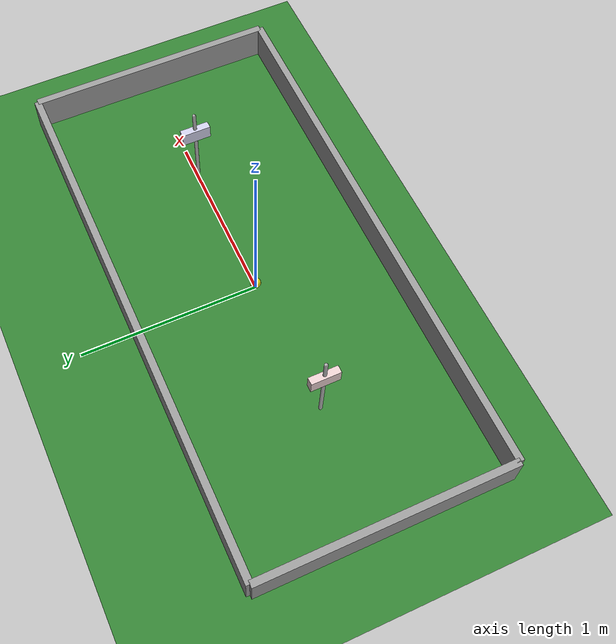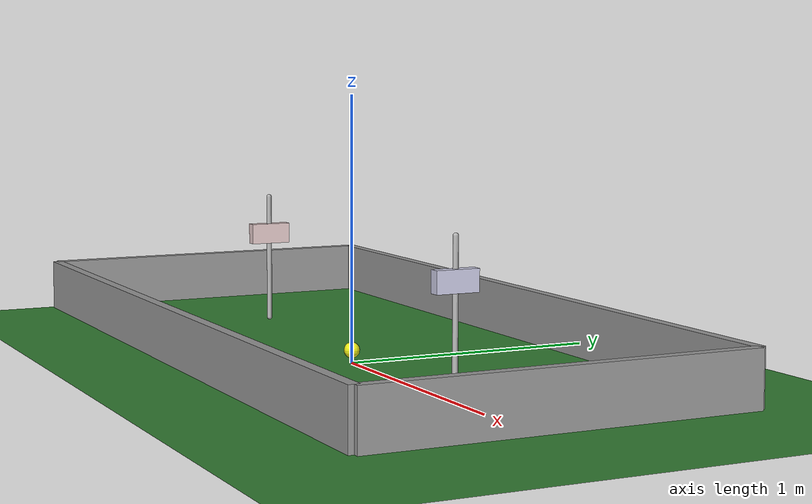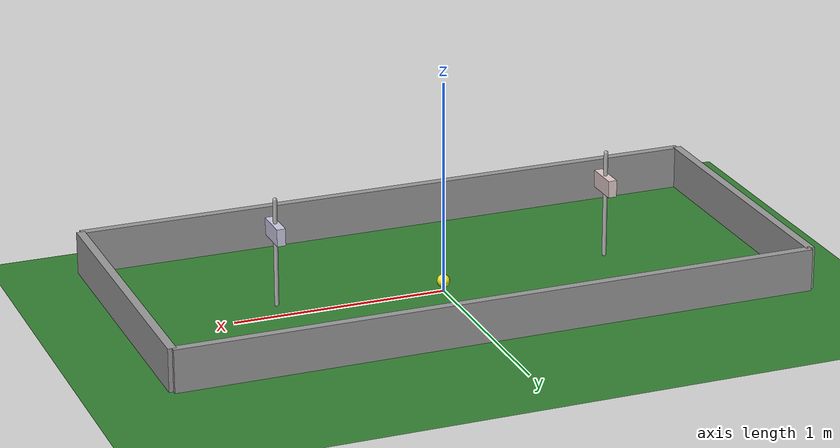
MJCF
<mujoco model="mini_foos_xyz">
  <option timestep="0.005" gravity="0 0 -9.81"/>

  <!-- Table dims (meters): half-length = 1.5 (x), half-width = 0.7 (y) -->
  <worldbody>
    <!-- Floor plane -->
    <geom name="floor" type="plane" size="2 2 0.1" rgba="0.2 0.5 0.2 1"/>

    <!-- Side walls (keep the ball on the table) -->
    <body name="walls" pos="0 0 0.05">
      <!-- end walls at x = ±1.5 -->
      <geom name="wall_xL" type="box" pos="-1.5 0 0.1" size="0.02 0.70 0.10" rgba="0.6 0.6 0.6 1"/>
      <geom name="wall_xR" type="box" pos="+1.5 0 0.1" size="0.02 0.70 0.10" rgba="0.6 0.6 0.6 1"/>
      <!-- side walls at y = ±0.7 -->
      <geom name="wall_yB" type="box" pos="0 -0.70 0.1" size="1.5 0.02 0.10" rgba="0.6 0.6 0.6 1"/>
      <geom name="wall_yT" type="box" pos="0 +0.70 0.1" size="1.5 0.02 0.10" rgba="0.6 0.6 0.6 1"/>
    </body>

    <!-- Ball with 3 slide joints (x,y,z) -->
    <body name="ball" pos="0 0 0.05">
      <!-- Explicit 3D translation joints; names match your Python: ball_x, ball_y, ball_z -->
      <joint name="ball_x" type="slide" axis="1 0 0" limited="true" range="-1.45 1.45"/>
      <joint name="ball_y" type="slide" axis="0 1 0" limited="true" range="-0.65 0.65"/>
      <joint name="ball_z" type="slide" axis="0 0 1" limited="true" range="0.03 0.30"/>
      <geom name="ball_geom" type="sphere" size="0.03"
            mass="0.03" friction="0.6 0.1 0.01" rgba="0.95 0.95 0.1 1"
            solref="0.005 1" solimp="0.9 0.9 0.01"/>
    </body>

    <!-- Right rod: rotate about y-axis -->
    <body name="rod_R" pos="0.8 0 0.06">
      <joint name="rodR_hinge" type="hinge" axis="0 1 0" limited="true" range="-1.2 1.2"/>
      <geom type="capsule" fromto="0 0 0  0 0 0.5" size="0.01" rgba="0.7 0.7 0.7 1"/>
      <body name="paddle_R" pos="0 0 0.35">
        <geom type="box" size="0.02 0.08 0.04" rgba="0.8 0.8 0.9 1"/>
      </body>
    </body>

    <!-- Left rod (opponent) -->
    <body name="rod_L" pos="-0.8 0 0.06">
      <joint name="rodL_hinge" type="hinge" axis="0 1 0" limited="true" range="-1.2 1.2"/>
      <geom type="capsule" fromto="0 0 0  0 0 0.5" size="0.01" rgba="0.7 0.7 0.7 1"/>
      <body name="paddle_L" pos="0 0 0.35">
        <geom type="box" size="0.02 0.08 0.04" rgba="0.9 0.8 0.8 1"/>
      </body>
    </body>
  </worldbody>

  <actuator>
    <motor name="u_right" joint="rodR_hinge" gear="2.0"/>
    <motor name="u_left"  joint="rodL_hinge" gear="2.0"/>
  </actuator>
</mujoco>
